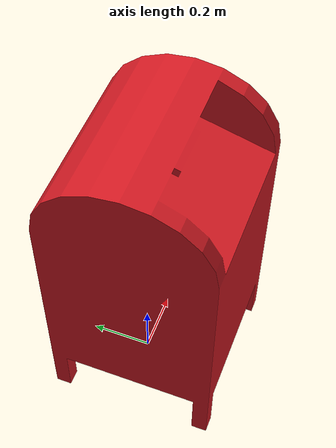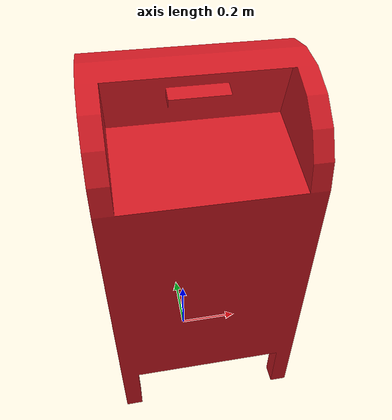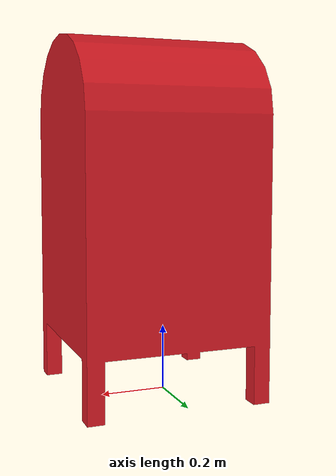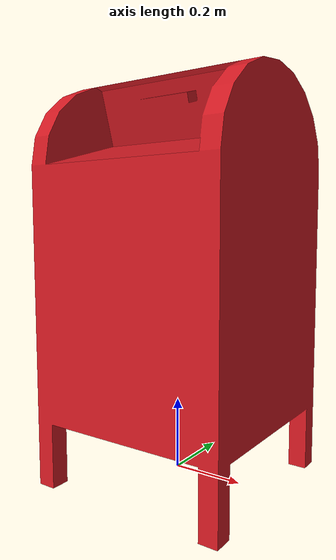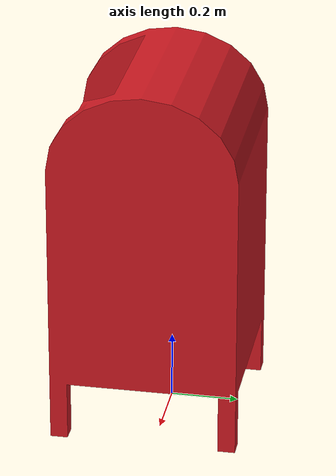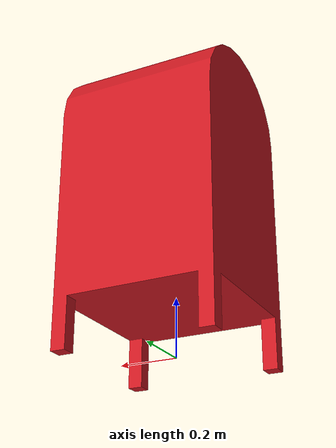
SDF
<?xml version='1.0'?>
<sdf version='1.6'>
  <model name='mailbox_red'>
    <link name='link_20'>
        <visual name='visual'>
        <pose frame=''>0 0 0 0 -0 0</pose>
        <geometry>
          <mesh>
            <uri>model://mailbox_red/meshes/mailbox.dae</uri>
            <scale>1 1 1</scale>
          </mesh>
        </geometry>
        <material>
          <lighting>1</lighting>
          <ambient>0.815 0.347 0.133 1</ambient>
          <diffuse>0.815 0.098 0.133 1</diffuse>
          <specular>0.01 0.01 0.01 1</specular>
          <emissive>0 0 0 1</emissive>
          <shader type='vertex'>
            <normal_map>__default__</normal_map>
          </shader>
        </material>
        <cast_shadows>1</cast_shadows>
        <transparency>0</transparency>
      </visual>
      <collision name='collision'>
        <laser_retro>0</laser_retro>
        <max_contacts>10</max_contacts>
        <pose frame=''>0 0 0 0 -0 0</pose>
        <geometry>
          <mesh>
            <uri>>model://mailbox_red/meshes/mailbox.dae</uri>
            <scale>1 1 1</scale>
          </mesh>
        </geometry>
       </collision>
    </link>
    <static>1</static>
    <allow_auto_disable>1</allow_auto_disable>
  </model>
</sdf>
